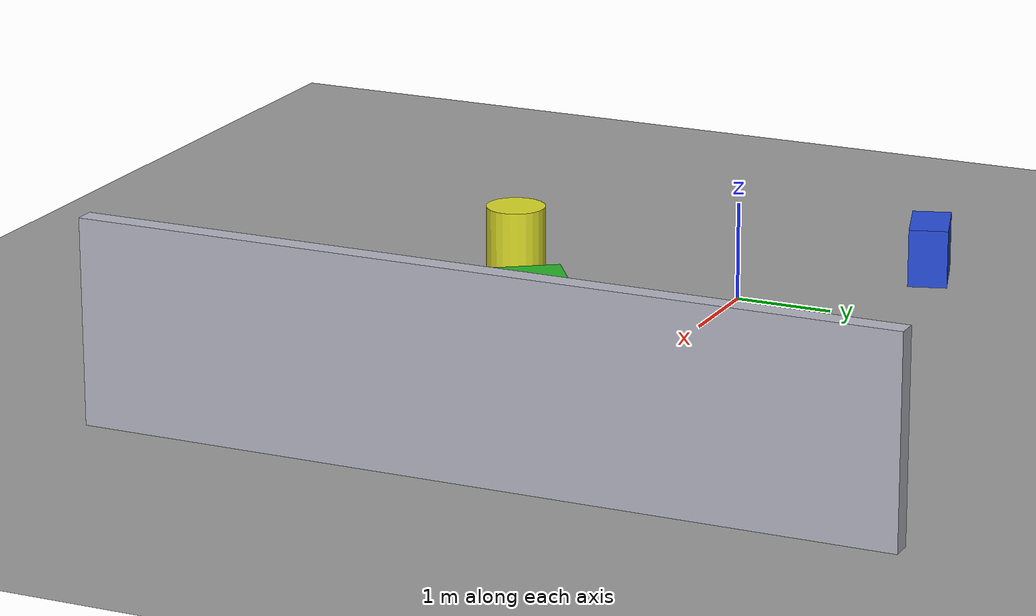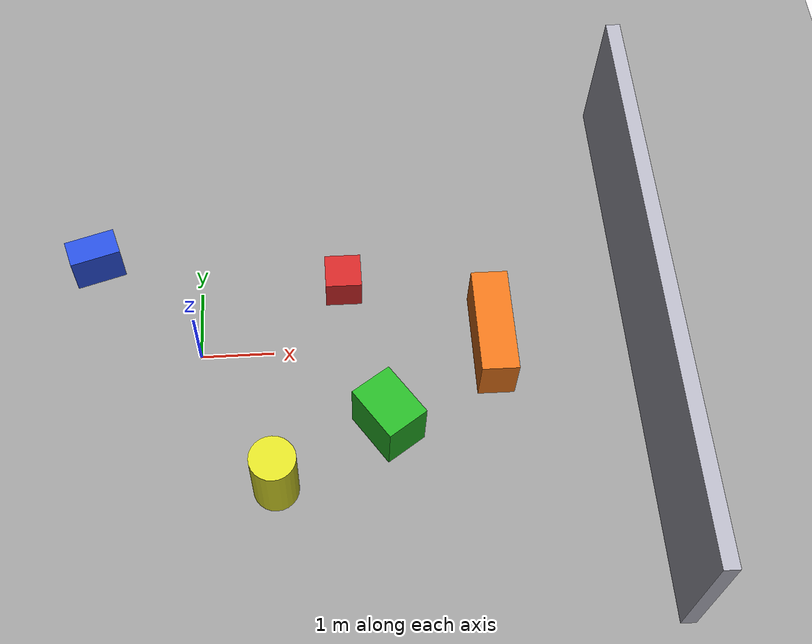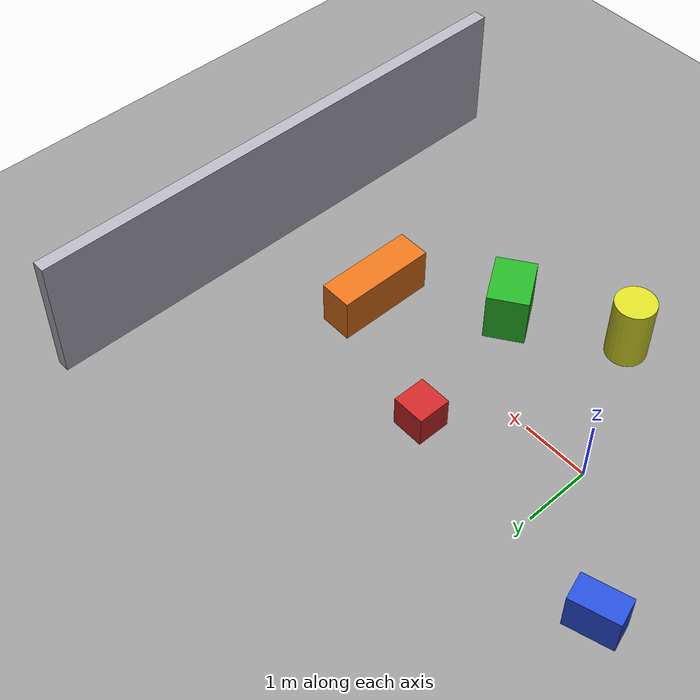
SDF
<?xml version="1.0" ?>
<sdf version="1.10">
  <world name="astra_world">

    <physics name="1ms" type="ignored">
      <max_step_size>0.001</max_step_size>
      <real_time_factor>1.0</real_time_factor>
    </physics>

    <plugin filename="gz-sim-physics-system"
            name="gz::sim::systems::Physics"/>
    <plugin filename="gz-sim-user-commands-system"
            name="gz::sim::systems::UserCommands"/>
    <plugin filename="gz-sim-scene-broadcaster-system"
            name="gz::sim::systems::SceneBroadcaster"/>
    <plugin filename="gz-sim-contact-system"
            name="gz::sim::systems::Contact"/>

    <light type="directional" name="sun">
      <cast_shadows>true</cast_shadows>
      <pose>0 0 10 0 0 0</pose>
      <diffuse>0.9 0.9 0.9 1</diffuse>
      <specular>0.3 0.3 0.3 1</specular>
      <direction>-0.5 0.3 -1</direction>
    </light>

    <scene>
      <ambient>0.5 0.5 0.5 1</ambient>
      <background>0.7 0.8 0.9 1</background>
      <grid>false</grid>
    </scene>

    <!-- Ground plane -->
    <model name="ground_plane">
      <static>true</static>
      <link name="link">
        <collision name="collision">
          <geometry><plane><normal>0 0 1</normal><size>50 50</size></plane></geometry>
        </collision>
        <visual name="visual">
          <geometry><plane><normal>0 0 1</normal><size>50 50</size></plane></geometry>
          <material>
            <ambient>0.4 0.4 0.4 1</ambient>
            <diffuse>0.6 0.6 0.6 1</diffuse>
            <specular>0.2 0.2 0.2 1</specular>
          </material>
        </visual>
      </link>
    </model>

    <!-- ===== Feature-rich obstacles for visual odometry ===== -->
    <model name="box_red">
      <static>true</static>
      <pose>2.0 1.0 0.25 0 0 0</pose>
      <link name="link">
        <collision name="c"><geometry><box><size>0.5 0.5 0.5</size></box></geometry></collision>
        <visual name="v">
          <geometry><box><size>0.5 0.5 0.5</size></box></geometry>
          <material><ambient>0.6 0.1 0.1 1</ambient><diffuse>0.8 0.15 0.15 1</diffuse></material>
        </visual>
      </link>
    </model>

    <model name="box_green">
      <static>true</static>
      <pose>2.5 -1.2 0.4 0 0 0.6</pose>
      <link name="link">
        <collision name="c"><geometry><box><size>0.6 0.8 0.8</size></box></geometry></collision>
        <visual name="v">
          <geometry><box><size>0.6 0.8 0.8</size></box></geometry>
          <material><ambient>0.1 0.5 0.1 1</ambient><diffuse>0.15 0.7 0.15 1</diffuse></material>
        </visual>
      </link>
    </model>

    <model name="cylinder_yellow">
      <static>true</static>
      <pose>1.0 -2.0 0.5 0 0 0</pose>
      <link name="link">
        <collision name="c"><geometry><cylinder><radius>0.3</radius><length>1.0</length></cylinder></geometry></collision>
        <visual name="v">
          <geometry><cylinder><radius>0.3</radius><length>1.0</length></cylinder></geometry>
          <material><ambient>0.6 0.6 0.1 1</ambient><diffuse>0.85 0.85 0.15 1</diffuse></material>
        </visual>
      </link>
    </model>

    <model name="box_blue">
      <static>true</static>
      <pose>-1.5 1.5 0.3 0 0 0.3</pose>
      <link name="link">
        <collision name="c"><geometry><box><size>0.7 0.4 0.6</size></box></geometry></collision>
        <visual name="v">
          <geometry><box><size>0.7 0.4 0.6</size></box></geometry>
          <material><ambient>0.1 0.2 0.6 1</ambient><diffuse>0.15 0.3 0.85 1</diffuse></material>
        </visual>
      </link>
    </model>

    <model name="box_orange">
      <static>true</static>
      <pose>4.0 0.0 0.35 0 0 0</pose>
      <link name="link">
        <collision name="c"><geometry><box><size>0.5 1.5 0.7</size></box></geometry></collision>
        <visual name="v">
          <geometry><box><size>0.5 1.5 0.7</size></box></geometry>
          <material><ambient>0.7 0.35 0.05 1</ambient><diffuse>0.9 0.45 0.1 1</diffuse></material>
        </visual>
      </link>
    </model>

    <!-- Back wall to give the camera something at the start -->
    <model name="wall_front">
      <static>true</static>
      <pose>6.0 0.0 1.0 0 0 0</pose>
      <link name="link">
        <collision name="c"><geometry><box><size>0.2 8.0 2.0</size></box></geometry></collision>
        <visual name="v">
          <geometry><box><size>0.2 8.0 2.0</size></box></geometry>
          <material><ambient>0.5 0.5 0.55 1</ambient><diffuse>0.7 0.7 0.75 1</diffuse></material>
        </visual>
      </link>
    </model>

  </world>
</sdf>
